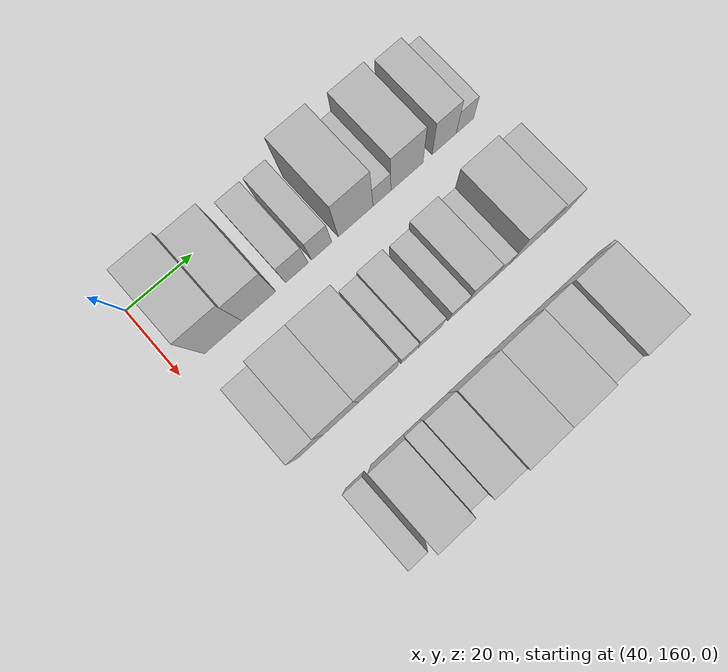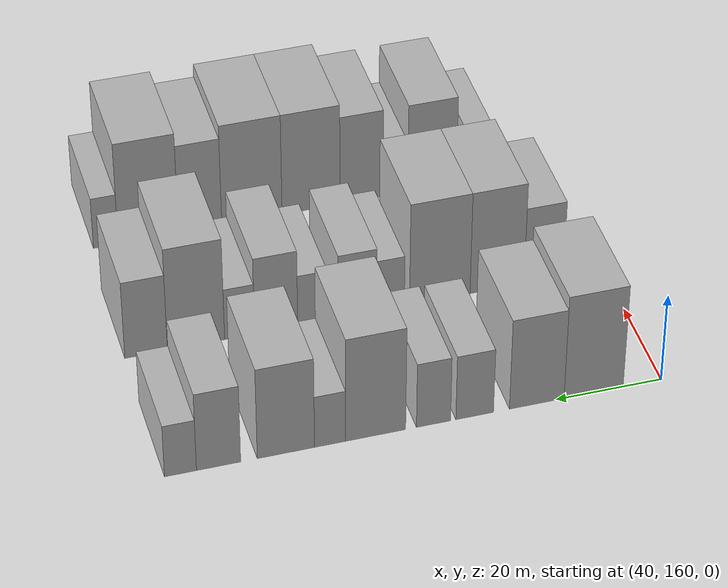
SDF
<sdf version="1.6">
 <world name="default">
  <model name="building_58">
   <static>1</static>
   <pose>50.0000 172.9131 0 0.000000 0.000000 0.000000</pose>
   <link name="link">
    <pose>0 0 12.00 0 0 0</pose>
    <collision name="collision"><geometry><box><size>20.0000 11.2285 24.0000</size></box></geometry></collision>
    <visual name="visual">
     <cast_shadows>0</cast_shadows>
     <geometry><box><size>20.0000 11.2285 24.0000</size></box></geometry>
     <material>
      <script>
       <uri>model://HANNAS_wall/materials/scripts</uri>
       <uri>model://HANNAS_wall/materials/textures</uri>
       <name>vrc/HANNAS_wall</name>
      </script>
     </material>
    </visual>
   </link>
  </model>
  <model name="building_59">
   <static>1</static>
   <pose>50.0000 183.6783 0 0.000000 0.000000 0.000000</pose>
   <link name="link">
    <pose>0 0 10.50 0 0 0</pose>
    <collision name="collision"><geometry><box><size>20.0000 10.3019 21.0000</size></box></geometry></collision>
    <visual name="visual">
     <cast_shadows>0</cast_shadows>
     <geometry><box><size>20.0000 10.3019 21.0000</size></box></geometry>
     <material>
      <script>
       <uri>model://HANNAS_wall/materials/scripts</uri>
       <uri>model://HANNAS_wall/materials/textures</uri>
       <name>vrc/HANNAS_wall</name>
      </script>
     </material>
    </visual>
   </link>
  </model>
  <model name="building_60">
   <static>1</static>
   <pose>50.0000 195.3477 0 0.000000 0.000000 0.000000</pose>
   <link name="link">
    <pose>0 0 7.50 0 0 0</pose>
    <collision name="collision"><geometry><box><size>20.0000 7.0370 15.0000</size></box></geometry></collision>
    <visual name="visual">
     <cast_shadows>0</cast_shadows>
     <geometry><box><size>20.0000 7.0370 15.0000</size></box></geometry>
     <material>
      <script>
       <uri>model://HANNAS_wall/materials/scripts</uri>
       <uri>model://HANNAS_wall/materials/textures</uri>
       <name>vrc/HANNAS_wall</name>
      </script>
     </material>
    </visual>
   </link>
  </model>
  <model name="building_61">
   <static>1</static>
   <pose>50.0000 203.0328 0 0.000000 0.000000 0.000000</pose>
   <link name="link">
    <pose>0 0 7.50 0 0 0</pose>
    <collision name="collision"><geometry><box><size>20.0000 6.3333 15.0000</size></box></geometry></collision>
    <visual name="visual">
     <cast_shadows>0</cast_shadows>
     <geometry><box><size>20.0000 6.3333 15.0000</size></box></geometry>
     <material>
      <script>
       <uri>model://HANNAS_wall/materials/scripts</uri>
       <uri>model://HANNAS_wall/materials/textures</uri>
       <name>vrc/HANNAS_wall</name>
      </script>
     </material>
    </visual>
   </link>
  </model>
  <model name="building_62">
   <static>1</static>
   <pose>50.0000 213.7313 0 0.000000 0.000000 0.000000</pose>
   <link name="link">
    <pose>0 0 12.00 0 0 0</pose>
    <collision name="collision"><geometry><box><size>20.0000 11.0636 24.0000</size></box></geometry></collision>
    <visual name="visual">
     <cast_shadows>0</cast_shadows>
     <geometry><box><size>20.0000 11.0636 24.0000</size></box></geometry>
     <material>
      <script>
       <uri>model://HANNAS_wall/materials/scripts</uri>
       <uri>model://HANNAS_wall/materials/textures</uri>
       <name>vrc/HANNAS_wall</name>
      </script>
     </material>
    </visual>
   </link>
  </model>
  <model name="building_63">
   <static>1</static>
   <pose>50.0000 222.1145 0 0.000000 0.000000 0.000000</pose>
   <link name="link">
    <pose>0 0 6.00 0 0 0</pose>
    <collision name="collision"><geometry><box><size>20.0000 5.7027 12.0000</size></box></geometry></collision>
    <visual name="visual">
     <cast_shadows>0</cast_shadows>
     <geometry><box><size>20.0000 5.7027 12.0000</size></box></geometry>
     <material>
      <script>
       <uri>model://HANNAS_wall/materials/scripts</uri>
       <uri>model://HANNAS_wall/materials/textures</uri>
       <name>vrc/HANNAS_wall</name>
      </script>
     </material>
    </visual>
   </link>
  </model>
  <model name="building_64">
   <static>1</static>
   <pose>50.0000 230.1820 0 0.000000 0.000000 0.000000</pose>
   <link name="link">
    <pose>0 0 10.50 0 0 0</pose>
    <collision name="collision"><geometry><box><size>20.0000 10.4323 21.0000</size></box></geometry></collision>
    <visual name="visual">
     <cast_shadows>0</cast_shadows>
     <geometry><box><size>20.0000 10.4323 21.0000</size></box></geometry>
     <material>
      <script>
       <uri>model://HANNAS_wall/materials/scripts</uri>
       <uri>model://HANNAS_wall/materials/textures</uri>
       <name>vrc/HANNAS_wall</name>
      </script>
     </material>
    </visual>
   </link>
  </model>
  <model name="building_65">
   <static>1</static>
   <pose>50.0000 242.3887 0 0.000000 0.000000 0.000000</pose>
   <link name="link">
    <pose>0 0 9.00 0 0 0</pose>
    <collision name="collision"><geometry><box><size>20.0000 7.9812 18.0000</size></box></geometry></collision>
    <visual name="visual">
     <cast_shadows>0</cast_shadows>
     <geometry><box><size>20.0000 7.9812 18.0000</size></box></geometry>
     <material>
      <script>
       <uri>model://HANNAS_wall/materials/scripts</uri>
       <uri>model://HANNAS_wall/materials/textures</uri>
       <name>vrc/HANNAS_wall</name>
      </script>
     </material>
    </visual>
   </link>
  </model>
  <model name="building_66">
   <static>1</static>
   <pose>50.0000 249.2571 0 0.000000 0.000000 0.000000</pose>
   <link name="link">
    <pose>0 0 6.00 0 0 0</pose>
    <collision name="collision"><geometry><box><size>20.0000 5.7558 12.0000</size></box></geometry></collision>
    <visual name="visual">
     <cast_shadows>0</cast_shadows>
     <geometry><box><size>20.0000 5.7558 12.0000</size></box></geometry>
     <material>
      <script>
       <uri>model://HANNAS_wall/materials/scripts</uri>
       <uri>model://HANNAS_wall/materials/textures</uri>
       <name>vrc/HANNAS_wall</name>
      </script>
     </material>
    </visual>
   </link>
  </model>
  <model name="building_131">
   <static>1</static>
   <pose>82.0000 171.6829 0 0.000000 0.000000 0.000000</pose>
   <link name="link">
    <pose>0 0 9.00 0 0 0</pose>
    <collision name="collision"><geometry><box><size>20.0000 7.7664 18.0000</size></box></geometry></collision>
    <visual name="visual">
     <cast_shadows>0</cast_shadows>
     <geometry><box><size>20.0000 7.7664 18.0000</size></box></geometry>
     <material>
      <script>
       <uri>model://HANNAS_wall/materials/scripts</uri>
       <uri>model://HANNAS_wall/materials/textures</uri>
       <name>vrc/HANNAS_wall</name>
      </script>
     </material>
    </visual>
   </link>
  </model>
  <model name="building_132">
   <static>1</static>
   <pose>82.0000 180.8640 0 0.000000 0.000000 0.000000</pose>
   <link name="link">
    <pose>0 0 12.00 0 0 0</pose>
    <collision name="collision"><geometry><box><size>20.0000 10.5958 24.0000</size></box></geometry></collision>
    <visual name="visual">
     <cast_shadows>0</cast_shadows>
     <geometry><box><size>20.0000 10.5958 24.0000</size></box></geometry>
     <material>
      <script>
       <uri>model://HANNAS_wall/materials/scripts</uri>
       <uri>model://HANNAS_wall/materials/textures</uri>
       <name>vrc/HANNAS_wall</name>
      </script>
     </material>
    </visual>
   </link>
  </model>
  <model name="building_133">
   <static>1</static>
   <pose>82.0000 192.0519 0 0.000000 0.000000 0.000000</pose>
   <link name="link">
    <pose>0 0 12.00 0 0 0</pose>
    <collision name="collision"><geometry><box><size>20.0000 11.7800 24.0000</size></box></geometry></collision>
    <visual name="visual">
     <cast_shadows>0</cast_shadows>
     <geometry><box><size>20.0000 11.7800 24.0000</size></box></geometry>
     <material>
      <script>
       <uri>model://HANNAS_wall/materials/scripts</uri>
       <uri>model://HANNAS_wall/materials/textures</uri>
       <name>vrc/HANNAS_wall</name>
      </script>
     </material>
    </visual>
   </link>
  </model>
  <model name="building_134">
   <static>1</static>
   <pose>82.0000 201.5853 0 0.000000 0.000000 0.000000</pose>
   <link name="link">
    <pose>0 0 6.00 0 0 0</pose>
    <collision name="collision"><geometry><box><size>20.0000 5.2868 12.0000</size></box></geometry></collision>
    <visual name="visual">
     <cast_shadows>0</cast_shadows>
     <geometry><box><size>20.0000 5.2868 12.0000</size></box></geometry>
     <material>
      <script>
       <uri>model://HANNAS_wall/materials/scripts</uri>
       <uri>model://HANNAS_wall/materials/textures</uri>
       <name>vrc/HANNAS_wall</name>
      </script>
     </material>
    </visual>
   </link>
  </model>
  <model name="building_135">
   <static>1</static>
   <pose>82.0000 207.9541 0 0.000000 0.000000 0.000000</pose>
   <link name="link">
    <pose>0 0 7.50 0 0 0</pose>
    <collision name="collision"><geometry><box><size>20.0000 7.4506 15.0000</size></box></geometry></collision>
    <visual name="visual">
     <cast_shadows>0</cast_shadows>
     <geometry><box><size>20.0000 7.4506 15.0000</size></box></geometry>
     <material>
      <script>
       <uri>model://HANNAS_wall/materials/scripts</uri>
       <uri>model://HANNAS_wall/materials/textures</uri>
       <name>vrc/HANNAS_wall</name>
      </script>
     </material>
    </visual>
   </link>
  </model>
  <model name="building_136">
   <static>1</static>
   <pose>82.0000 216.5511 0 0.000000 0.000000 0.000000</pose>
   <link name="link">
    <pose>0 0 6.00 0 0 0</pose>
    <collision name="collision"><geometry><box><size>20.0000 5.7436 12.0000</size></box></geometry></collision>
    <visual name="visual">
     <cast_shadows>0</cast_shadows>
     <geometry><box><size>20.0000 5.7436 12.0000</size></box></geometry>
     <material>
      <script>
       <uri>model://HANNAS_wall/materials/scripts</uri>
       <uri>model://HANNAS_wall/materials/textures</uri>
       <name>vrc/HANNAS_wall</name>
      </script>
     </material>
    </visual>
   </link>
  </model>
  <model name="building_137">
   <static>1</static>
   <pose>82.0000 223.5394 0 0.000000 0.000000 0.000000</pose>
   <link name="link">
    <pose>0 0 9.00 0 0 0</pose>
    <collision name="collision"><geometry><box><size>20.0000 8.2330 18.0000</size></box></geometry></collision>
    <visual name="visual">
     <cast_shadows>0</cast_shadows>
     <geometry><box><size>20.0000 8.2330 18.0000</size></box></geometry>
     <material>
      <script>
       <uri>model://HANNAS_wall/materials/scripts</uri>
       <uri>model://HANNAS_wall/materials/textures</uri>
       <name>vrc/HANNAS_wall</name>
      </script>
     </material>
    </visual>
   </link>
  </model>
  <model name="building_138">
   <static>1</static>
   <pose>82.0000 230.4822 0 0.000000 0.000000 0.000000</pose>
   <link name="link">
    <pose>0 0 6.00 0 0 0</pose>
    <collision name="collision"><geometry><box><size>20.0000 5.6526 12.0000</size></box></geometry></collision>
    <visual name="visual">
     <cast_shadows>0</cast_shadows>
     <geometry><box><size>20.0000 5.6526 12.0000</size></box></geometry>
     <material>
      <script>
       <uri>model://HANNAS_wall/materials/scripts</uri>
       <uri>model://HANNAS_wall/materials/textures</uri>
       <name>vrc/HANNAS_wall</name>
      </script>
     </material>
    </visual>
   </link>
  </model>
  <model name="building_139">
   <static>1</static>
   <pose>82.0000 238.6883 0 0.000000 0.000000 0.000000</pose>
   <link name="link">
    <pose>0 0 12.00 0 0 0</pose>
    <collision name="collision"><geometry><box><size>20.0000 10.7597 24.0000</size></box></geometry></collision>
    <visual name="visual">
     <cast_shadows>0</cast_shadows>
     <geometry><box><size>20.0000 10.7597 24.0000</size></box></geometry>
     <material>
      <script>
       <uri>model://HANNAS_wall/materials/scripts</uri>
       <uri>model://HANNAS_wall/materials/textures</uri>
       <name>vrc/HANNAS_wall</name>
      </script>
     </material>
    </visual>
   </link>
  </model>
  <model name="building_140">
   <static>1</static>
   <pose>82.0000 248.0522 0 0.000000 0.000000 0.000000</pose>
   <link name="link">
    <pose>0 0 9.00 0 0 0</pose>
    <collision name="collision"><geometry><box><size>20.0000 7.9680 18.0000</size></box></geometry></collision>
    <visual name="visual">
     <cast_shadows>0</cast_shadows>
     <geometry><box><size>20.0000 7.9680 18.0000</size></box></geometry>
     <material>
      <script>
       <uri>model://HANNAS_wall/materials/scripts</uri>
       <uri>model://HANNAS_wall/materials/textures</uri>
       <name>vrc/HANNAS_wall</name>
      </script>
     </material>
    </visual>
   </link>
  </model>
  <model name="building_207">
   <static>1</static>
   <pose>114.0000 174.1930 0 0.000000 0.000000 0.000000</pose>
   <link name="link">
    <pose>0 0 6.00 0 0 0</pose>
    <collision name="collision"><geometry><box><size>20.0000 5.4032 12.0000</size></box></geometry></collision>
    <visual name="visual">
     <cast_shadows>0</cast_shadows>
     <geometry><box><size>20.0000 5.4032 12.0000</size></box></geometry>
     <material>
      <script>
       <uri>model://HANNAS_wall/materials/scripts</uri>
       <uri>model://HANNAS_wall/materials/textures</uri>
       <name>vrc/HANNAS_wall</name>
      </script>
     </material>
    </visual>
   </link>
  </model>
  <model name="building_208">
   <static>1</static>
   <pose>114.0000 183.8179 0 0.000000 0.000000 0.000000</pose>
   <link name="link">
    <pose>0 0 10.50 0 0 0</pose>
    <collision name="collision"><geometry><box><size>20.0000 9.8467 21.0000</size></box></geometry></collision>
    <visual name="visual">
     <cast_shadows>0</cast_shadows>
     <geometry><box><size>20.0000 9.8467 21.0000</size></box></geometry>
     <material>
      <script>
       <uri>model://HANNAS_wall/materials/scripts</uri>
       <uri>model://HANNAS_wall/materials/textures</uri>
       <name>vrc/HANNAS_wall</name>
      </script>
     </material>
    </visual>
   </link>
  </model>
  <model name="building_209">
   <static>1</static>
   <pose>114.0000 191.2438 0 0.000000 0.000000 0.000000</pose>
   <link name="link">
    <pose>0 0 6.00 0 0 0</pose>
    <collision name="collision"><geometry><box><size>20.0000 5.0050 12.0000</size></box></geometry></collision>
    <visual name="visual">
     <cast_shadows>0</cast_shadows>
     <geometry><box><size>20.0000 5.0050 12.0000</size></box></geometry>
     <material>
      <script>
       <uri>model://HANNAS_wall/materials/scripts</uri>
       <uri>model://HANNAS_wall/materials/textures</uri>
       <name>vrc/HANNAS_wall</name>
      </script>
     </material>
    </visual>
   </link>
  </model>
  <model name="building_210">
   <static>1</static>
   <pose>114.0000 198.0638 0 0.000000 0.000000 0.000000</pose>
   <link name="link">
    <pose>0 0 10.50 0 0 0</pose>
    <collision name="collision"><geometry><box><size>20.0000 8.6350 21.0000</size></box></geometry></collision>
    <visual name="visual">
     <cast_shadows>0</cast_shadows>
     <geometry><box><size>20.0000 8.6350 21.0000</size></box></geometry>
     <material>
      <script>
       <uri>model://HANNAS_wall/materials/scripts</uri>
       <uri>model://HANNAS_wall/materials/textures</uri>
       <name>vrc/HANNAS_wall</name>
      </script>
     </material>
    </visual>
   </link>
  </model>
  <model name="building_211">
   <static>1</static>
   <pose>114.0000 208.1645 0 0.000000 0.000000 0.000000</pose>
   <link name="link">
    <pose>0 0 12.00 0 0 0</pose>
    <collision name="collision"><geometry><box><size>20.0000 11.5664 24.0000</size></box></geometry></collision>
    <visual name="visual">
     <cast_shadows>0</cast_shadows>
     <geometry><box><size>20.0000 11.5664 24.0000</size></box></geometry>
     <material>
      <script>
       <uri>model://HANNAS_wall/materials/scripts</uri>
       <uri>model://HANNAS_wall/materials/textures</uri>
       <name>vrc/HANNAS_wall</name>
      </script>
     </material>
    </visual>
   </link>
  </model>
  <model name="building_212">
   <static>1</static>
   <pose>114.0000 219.9144 0 0.000000 0.000000 0.000000</pose>
   <link name="link">
    <pose>0 0 12.00 0 0 0</pose>
    <collision name="collision"><geometry><box><size>20.0000 11.9335 24.0000</size></box></geometry></collision>
    <visual name="visual">
     <cast_shadows>0</cast_shadows>
     <geometry><box><size>20.0000 11.9335 24.0000</size></box></geometry>
     <material>
      <script>
       <uri>model://HANNAS_wall/materials/scripts</uri>
       <uri>model://HANNAS_wall/materials/textures</uri>
       <name>vrc/HANNAS_wall</name>
      </script>
     </material>
    </visual>
   </link>
  </model>
  <model name="building_213">
   <static>1</static>
   <pose>114.0000 230.1419 0 0.000000 0.000000 0.000000</pose>
   <link name="link">
    <pose>0 0 10.50 0 0 0</pose>
    <collision name="collision"><geometry><box><size>20.0000 8.5214 21.0000</size></box></geometry></collision>
    <visual name="visual">
     <cast_shadows>0</cast_shadows>
     <geometry><box><size>20.0000 8.5214 21.0000</size></box></geometry>
     <material>
      <script>
       <uri>model://HANNAS_wall/materials/scripts</uri>
       <uri>model://HANNAS_wall/materials/textures</uri>
       <name>vrc/HANNAS_wall</name>
      </script>
     </material>
    </visual>
   </link>
  </model>
  <model name="building_214">
   <static>1</static>
   <pose>114.0000 240.2702 0 0.000000 0.000000 0.000000</pose>
   <link name="link">
    <pose>0 0 12.00 0 0 0</pose>
    <collision name="collision"><geometry><box><size>20.0000 11.7352 24.0000</size></box></geometry></collision>
    <visual name="visual">
     <cast_shadows>0</cast_shadows>
     <geometry><box><size>20.0000 11.7352 24.0000</size></box></geometry>
     <material>
      <script>
       <uri>model://HANNAS_wall/materials/scripts</uri>
       <uri>model://HANNAS_wall/materials/textures</uri>
       <name>vrc/HANNAS_wall</name>
      </script>
     </material>
    </visual>
   </link>
  </model>
  <model name="building_215">
   <static>1</static>
   <pose>114.0000 248.5429 0 0.000000 0.000000 0.000000</pose>
   <link name="link">
    <pose>0 0 6.00 0 0 0</pose>
    <collision name="collision"><geometry><box><size>20.0000 4.8103 12.0000</size></box></geometry></collision>
    <visual name="visual">
     <cast_shadows>0</cast_shadows>
     <geometry><box><size>20.0000 4.8103 12.0000</size></box></geometry>
     <material>
      <script>
       <uri>model://HANNAS_wall/materials/scripts</uri>
       <uri>model://HANNAS_wall/materials/textures</uri>
       <name>vrc/HANNAS_wall</name>
      </script>
     </material>
    </visual>
   </link>
  </model>
 </world>
</sdf>
